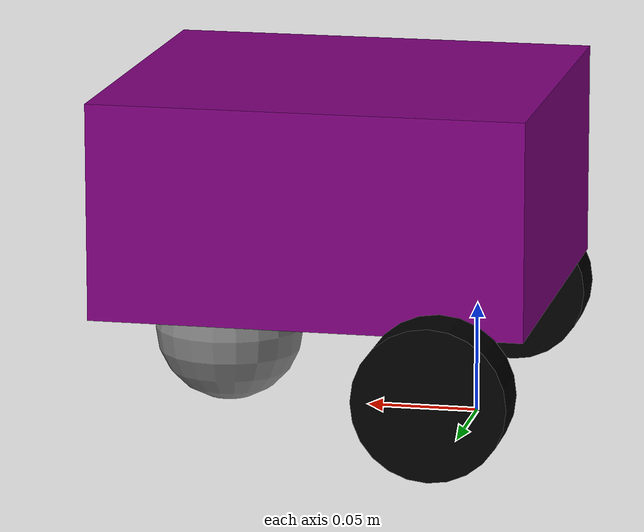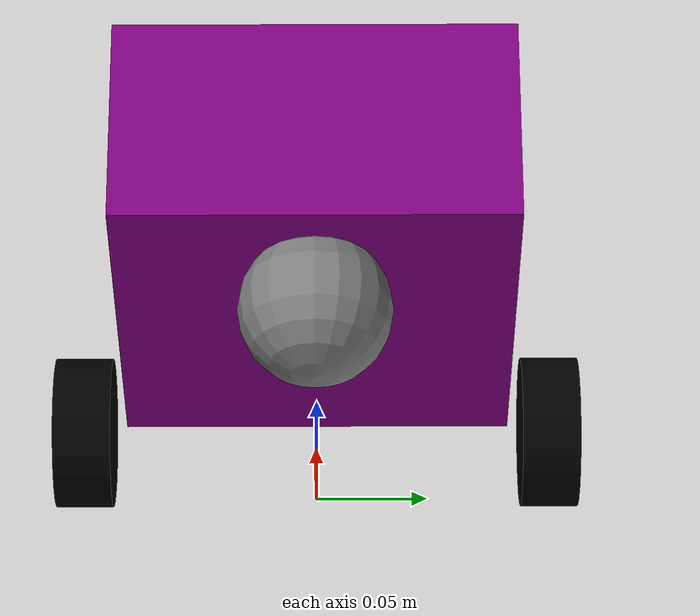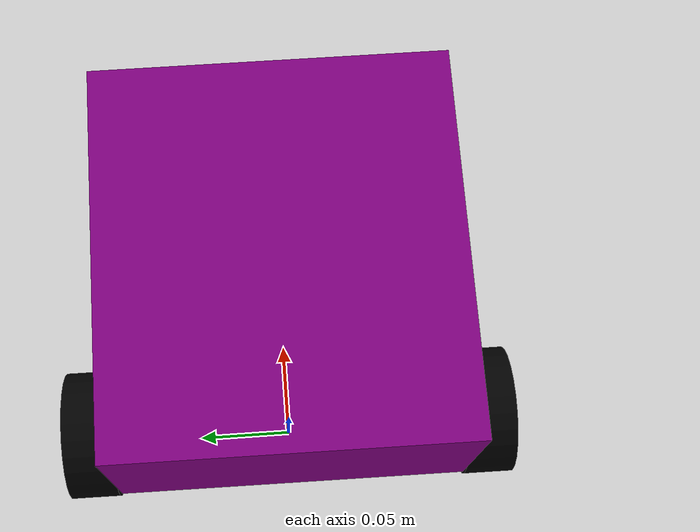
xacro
<?xml version="1.0"?>
<robot xmlns:xacro="http://www.ros.org/wiki/xacro" >
<!-- /home/jetson/myspace/autoJetsonBot/src/my_robot_launch/urdf/robot_core.xacro -->
<xacro:include filename="inertial_macros.xacro" />

    <!-- COLORS FOR ROBOT PARTS -->
    <material name="grey">
        <color rgba="0.5 0.5 0.5 1"/>
    </material>
        <material name="grey2">
        <color rgba="0.75 0.75 0.75 1"/>
    </material>
    <material name="red">
        <color rgba="1 0 0 1"/>
    </material>
    <material name="green">
        <color rgba="0 1 0 1"/>
    </material>
    <material name="blue">
        <color rgba="0 0 1 1"/>
    </material>
    <material name="yellow">
        <color rgba="1 1 0 1"/>
    </material>
    <material name="orange">
        <color rgba="1 0.5 0 1"/>
    </material>
    <material name="purple">
        <color rgba="0.5 0 0.5 1"/>
    </material>
    <material name="black">
        <color rgba="0 0 0 1"/>
    </material>
    <material name="white">
        <color rgba="1 1 1 1"/>
    </material>

    <!-- BASE_FOOTPRINT LINK (The Floor Projection) -->

    <link name="base_footprint">
    </link>

    <joint name="base_footprint_joint" type="fixed">
        <parent link="base_footprint"/>
        <child link="base_link"/>
        <origin xyz="0 0 0.056" rpy="0 0 0"/>
    </joint>

    <!-- ROBOT BASE LINK (The Center of the Chassis Floor) -->

    <link name="base_link">
    </link>

    <!-- ROBOT CHASSIS LINK-->
    <joint name="chassis_joint" type="fixed">
        <origin xyz="0 0 0" rpy="0 0 0"/>
        <parent link="base_link"/>
        <child link="chassis"/>
    </joint>

    <!-- ROBOT CHASSIS -->
    <link name="chassis">
        <visual>
            <origin xyz="0.061 0 0.0485" rpy="0 0 0"/>
            <geometry>
                <box size="0.194 0.178 0.097"/>
            </geometry>
            <material name="purple"/>
        </visual>
        <collision>
            <origin xyz="0.061 0 0.0485" rpy="0 0 0"/>
            <geometry>
                <box size="0.194 0.178 0.097"/>
            </geometry>
        </collision>
        <xacro:inertial_box mass="1.2" x="0.194" y="0.178" z="0.097">
            <origin xyz="0.061 0 0.0485" rpy="0 0 0"/>
        </xacro:inertial_box>
    </link>
    <gazebo reference="chassis">
        <material>Gazebo/White</material>
    </gazebo>

    <!-- ROBOT WHEELS -->

    <!-- LEFT WHEEL -->
    <joint name="left_wheel_joint" type="continuous">
        <origin xyz="0 0.106 -0.022" rpy="-${pi/2} 0 0"/>
        <parent link="base_link"/>
        <child link="left_wheel"/>
        <axis xyz="0 0 1"/>
    </joint>

    <link name="left_wheel">
        <visual>
            <origin xyz="0 0 0" rpy="0 0 0"/>
            <geometry>
                <cylinder radius="0.034" length="0.026"/>
            </geometry>
            <material name="black"/>
        </visual>
        <collision>
            <origin xyz="0 0 0" rpy="0 0 0"/>
            <geometry>
                <cylinder radius="0.034" length="0.026"/>
            </geometry>
        </collision>
        <xacro:inertial_cylinder mass="0.1" length="0.026" radius="0.034">
            <origin xyz="0 0 0" rpy="0 0 0"/>
        </xacro:inertial_cylinder>

    </link>
    <gazebo reference="left_wheel">
        <material>Gazebo/Black</material>
        <mu1 value="100.0"/>
        <mu2 value="100.0"/>
        <kp value="1000000.0" />
        <kd value="1.0" />
    </gazebo>

    <!-- RIGHT WHEEL -->
    <joint name="right_wheel_joint" type="continuous">
        <origin xyz="0 -0.106 -0.022" rpy="${pi/2} 0 0"/>
        <parent link="base_link"/>
        <child link="right_wheel"/>
        <axis xyz="0 0 -1"/>
    </joint>

    <link name="right_wheel">
        <visual>
            <origin xyz="0 0 0" rpy="0 0 0"/>
            <geometry>
                <cylinder radius="0.034" length="0.026"/>
            </geometry>
            <material name="black"/>
        </visual>
        <collision>
            <origin xyz="0 0 0" rpy="0 0 0"/>
            <geometry>
                <cylinder radius="0.034" length="0.026"/>
            </geometry>
        </collision>
        <xacro:inertial_cylinder mass="0.1" length="0.026" radius="0.034">
            <origin xyz="0 0 0" rpy="0 0 0"/>
        </xacro:inertial_cylinder>
    </link>
    <gazebo reference="right_wheel">
        <material>Gazebo/Black</material>
        <mu1 value="100.0"/>
        <mu2 value="100.0"/>
        <kp value="1000000.0" />
        <kd value="1.0" />
    </gazebo>

    <!-- CASTER WHEEL -->
    <joint name="caster_wheel_joint" type="fixed">
        <origin xyz="0.115 0 -0.022" rpy="0 0 0"/>
        <parent link="base_link"/>
        <child link="caster_wheel"/>
    </joint>

    <link name="caster_wheel">
        <visual>
            <origin xyz="0 0 0" rpy="0 0 0"/>
            <geometry>
                <sphere radius="0.034"/>
            </geometry>
            <material name="grey"/>
        </visual>
        <collision>
            <origin xyz="0 0 0" rpy="0 0 0"/>
            <geometry>
                <sphere radius="0.034"/>
            </geometry>
        </collision>
        <xacro:inertial_sphere mass="0.1" radius="0.034">
            <origin xyz="0 0 0" rpy="0 0 0"/>
        </xacro:inertial_sphere>
    </link>
    <gazebo reference="caster_wheel">
        <material>Gazebo/Black</material>
        <mu1 value="0.001"/>
        <mu2 value="0.001"/>
    </gazebo>

</robot>
